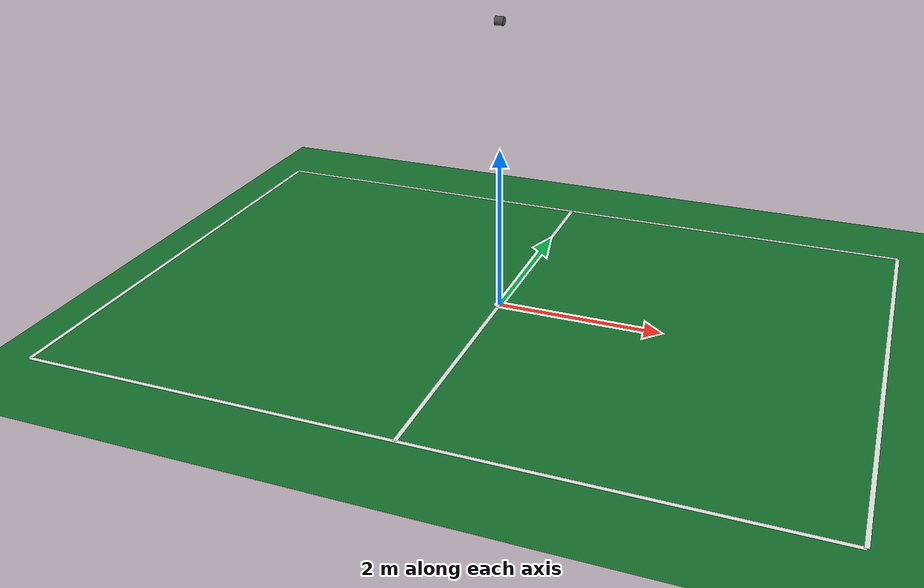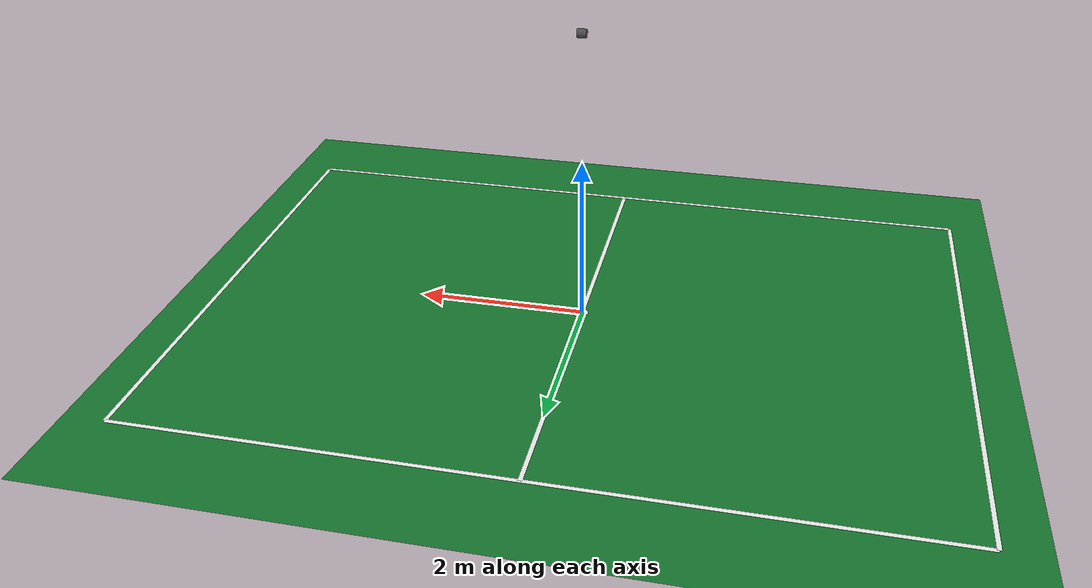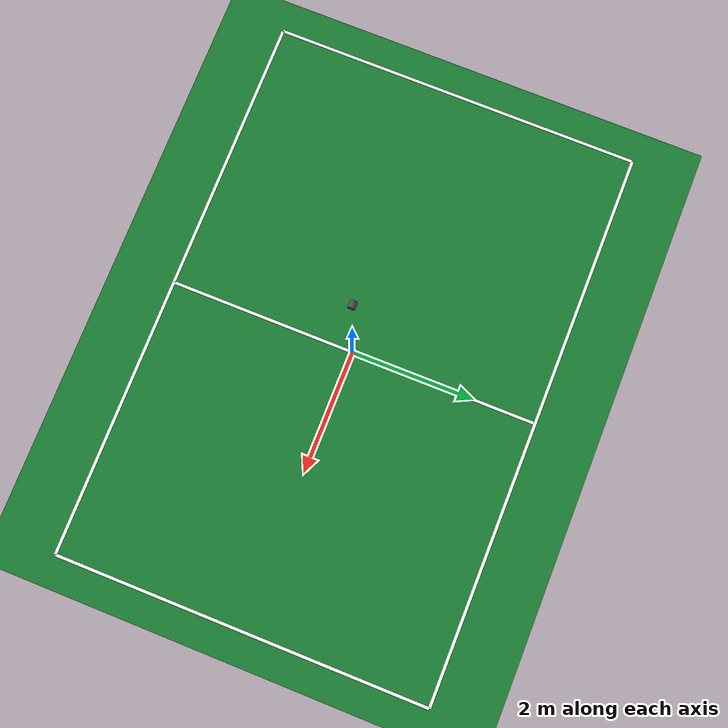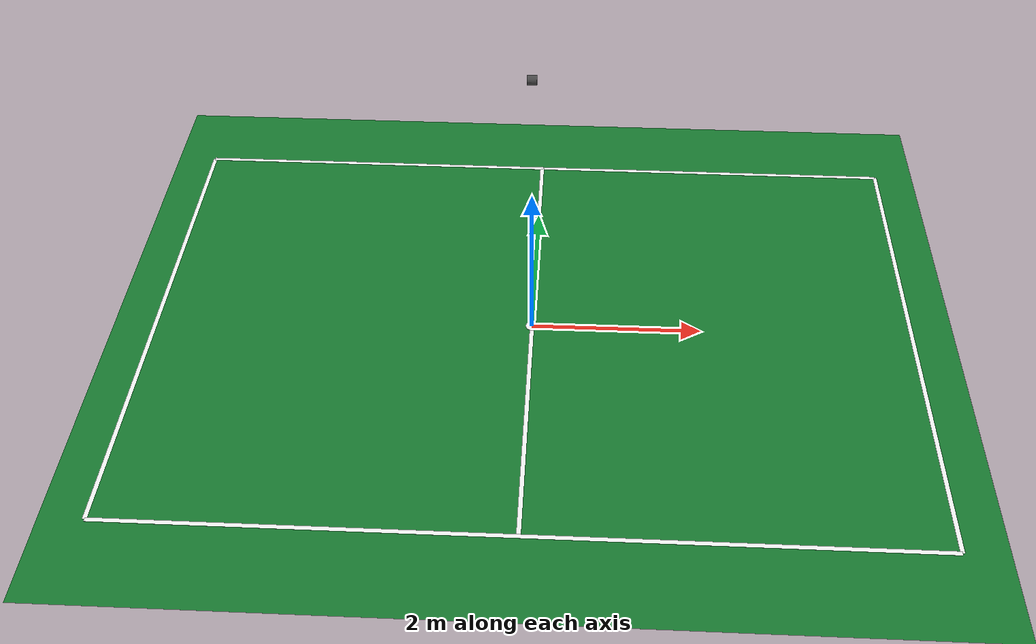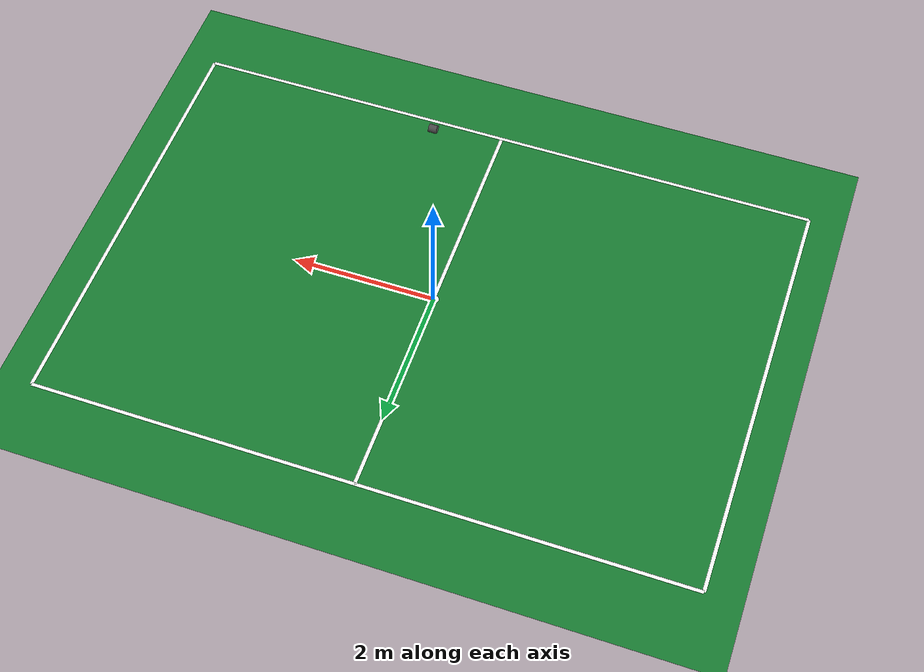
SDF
<?xml version="1.0" ?>
<sdf version="1.6">
  <world name="ssl_field_world">
    <!-- Directional Sun Light -->
    <include>
      <uri>model://sun</uri>
    </include>

    <!-- Physics Parameters for Deterministic Simulation -->
    <physics type="ode">
      <max_step_size>0.001</max_step_size>
      <real_time_factor>1.0</real_time_factor>
      <real_time_update_rate>1000</real_time_update_rate>
      <ode>
        <solver>
          <type>quick</type>
          <iters>50</iters>
          <sor>1.3</sor>
        </solver>
        <constraints>
          <cfm>0.00001</cfm>
          <erp>0.2</erp>
          <contact_max_correcting_vel>100.0</contact_max_correcting_vel>
          <contact_surface_layer>0.001</contact_surface_layer>
        </constraints>
      </ode>
    </physics>

    <!-- RoboCup SSL Division B Field (Green Carpet Ground Plane) -->
    <model name="ssl_field_ground">
      <static>true</static>
      <link name="field_link">
        <collision name="field_collision">
          <geometry>
            <plane>
              <normal>0 0 1</normal>
              <size>10.0 8.0</size>
            </plane>
          </geometry>
          <surface>
            <friction>
              <ode>
                <mu>1.0</mu>
                <mu2>1.0</mu2>
              </ode>
            </friction>
          </surface>
        </collision>
        <visual name="field_visual">
          <geometry>
            <plane>
              <normal>0 0 1</normal>
              <size>10.0 8.0</size>
            </plane>
          </geometry>
          <material>
            <ambient>0.08 0.45 0.15 1.0</ambient>
            <diffuse>0.10 0.50 0.20 1.0</diffuse>
            <specular>0.05 0.05 0.05 1.0</specular>
          </material>
        </visual>

        <!-- White Boundary Lines (Visual) -->
        <visual name="boundary_line_north">
          <pose>0 3.0 0.001 0 0 0</pose>
          <geometry>
            <box><size>9.0 0.05 0.001</size></box>
          </geometry>
          <material><ambient>1 1 1 1</ambient><diffuse>1 1 1 1</diffuse></material>
        </visual>
        <visual name="boundary_line_south">
          <pose>0 -3.0 0.001 0 0 0</pose>
          <geometry>
            <box><size>9.0 0.05 0.001</size></box>
          </geometry>
          <material><ambient>1 1 1 1</ambient><diffuse>1 1 1 1</diffuse></material>
        </visual>
        <visual name="boundary_line_east">
          <pose>4.5 0 0.001 0 0 0</pose>
          <geometry>
            <box><size>0.05 6.0 0.001</size></box>
          </geometry>
          <material><ambient>1 1 1 1</ambient><diffuse>1 1 1 1</diffuse></material>
        </visual>
        <visual name="boundary_line_west">
          <pose>-4.5 0 0.001 0 0 0</pose>
          <geometry>
            <box><size>0.05 6.0 0.001</size></box>
          </geometry>
          <material><ambient>1 1 1 1</ambient><diffuse>1 1 1 1</diffuse></material>
        </visual>
        <visual name="center_halfway_line">
          <pose>0 0 0.001 0 0 0</pose>
          <geometry>
            <box><size>0.05 6.0 0.001</size></box>
          </geometry>
          <material><ambient>1 1 1 1</ambient><diffuse>1 1 1 1</diffuse></material>
        </visual>
        <visual name="center_spot">
          <pose>0 0 0.002 0 0 0</pose>
          <geometry>
            <cylinder><radius>0.075</radius><length>0.001</length></cylinder>
          </geometry>
          <material><ambient>1 1 1 1</ambient><diffuse>1 1 1 1</diffuse></material>
        </visual>
      </link>
    </model>

    <!-- Optional Simulated Overhead Camera Mount (Looking down at z=3.5m) -->
    <!-- Ready to be turned into a Gazebo camera sensor when vision tracking is activated -->
    <model name="overhead_rig_marker">
      <static>true</static>
      <pose>0 0 3.5 0 1.570796 0</pose>
      <link name="overhead_mount_link">
        <visual name="mount_visual">
          <geometry>
            <cylinder><radius>0.05</radius><length>0.1</length></cylinder>
          </geometry>
          <material><ambient>0.3 0.3 0.3 1</ambient></material>
        </visual>
      </link>
    </model>

  </world>
</sdf>
